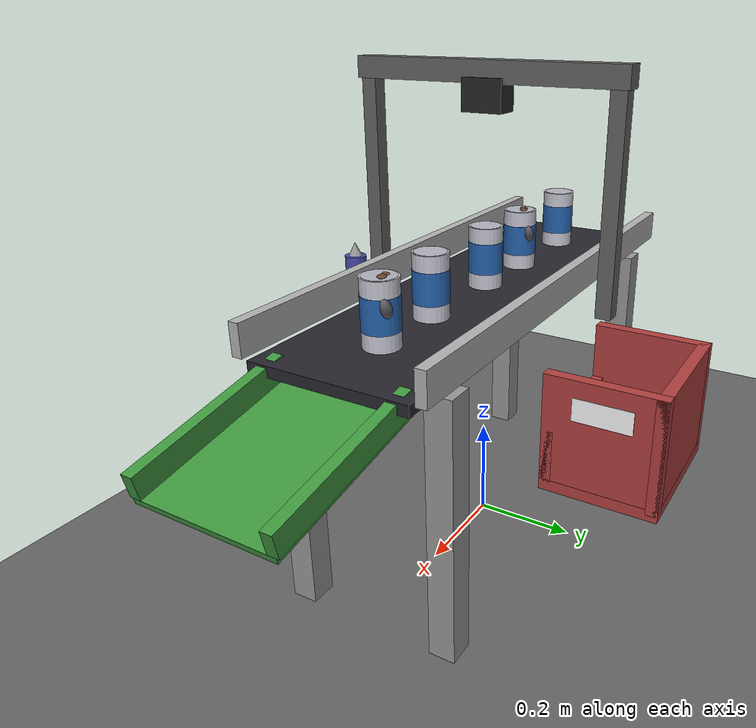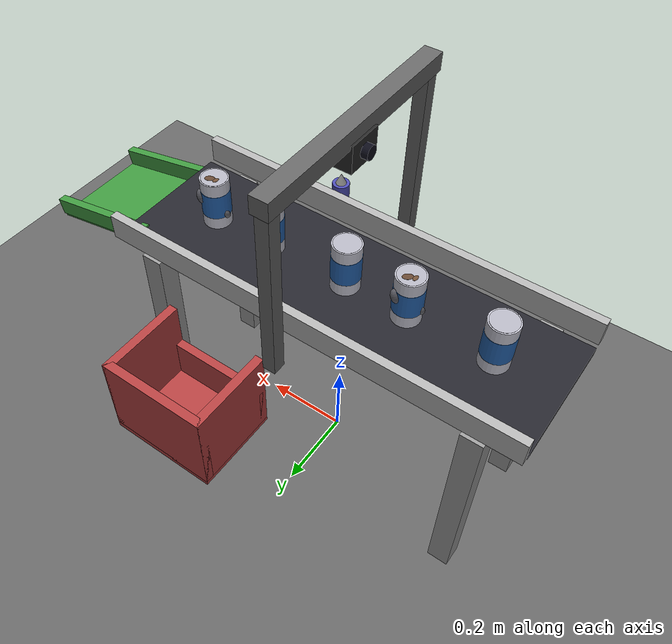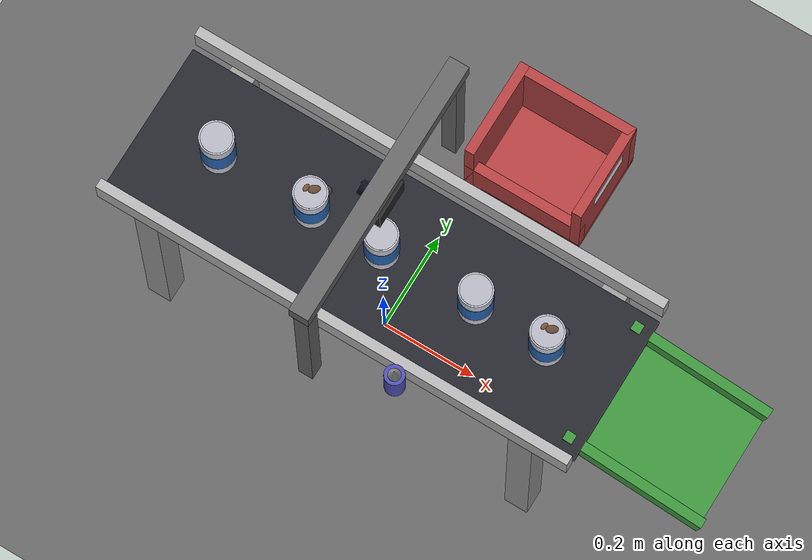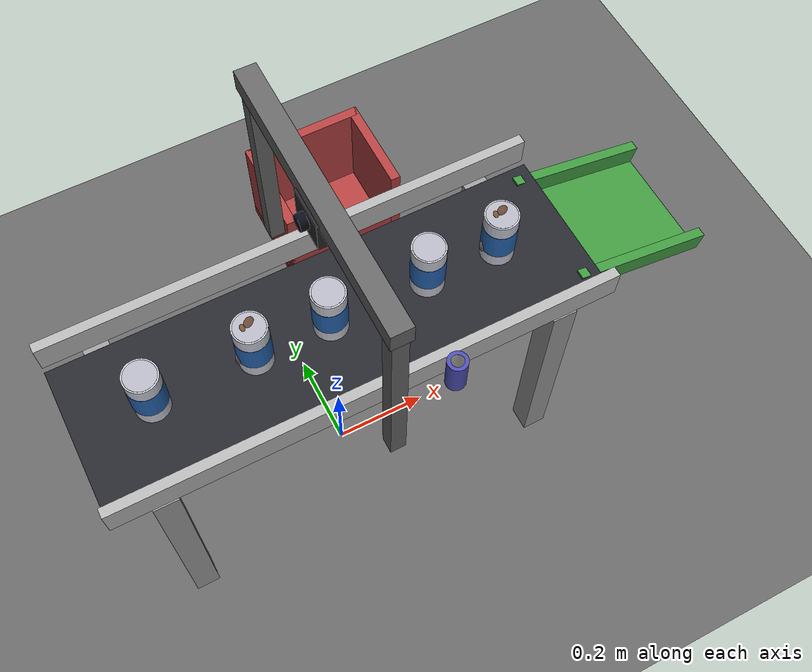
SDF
<?xml version="1.0" ?>
<sdf version="1.9">
  <world name="fruit_inspection">

    <!-- ==================== PHYSICS ==================== -->
    <physics name="1ms" type="ignored">
      <max_step_size>0.001</max_step_size>
      <real_time_factor>1.0</real_time_factor>
      <real_time_update_rate>1000</real_time_update_rate>
    </physics>

    <!-- Required plugins -->
    <plugin filename="gz-sim-physics-system" name="gz::sim::systems::Physics"/>
    <plugin filename="gz-sim-scene-broadcaster-system" name="gz::sim::systems::SceneBroadcaster"/>
    <plugin filename="gz-sim-user-commands-system" name="gz::sim::systems::UserCommands"/>
    <plugin filename="gz-sim-sensors-system" name="gz::sim::systems::Sensors">
      <render_engine>ogre2</render_engine>
    </plugin>
    <plugin filename="gz-sim-contact-system" name="gz::sim::systems::Contact"/>

    <!-- ==================== SCENE ==================== -->
    <scene>
      <ambient>0.6 0.6 0.6 1</ambient>
      <background>0.2 0.2 0.25 1</background>
      <shadows>true</shadows>
    </scene>

    <!-- ==================== LIGHTING ==================== -->
    <!-- Bright overhead lighting for consistent inspection -->
    <light type="directional" name="sun">
      <cast_shadows>true</cast_shadows>
      <pose>0 0 10 0 0 0</pose>
      <diffuse>0.9 0.9 0.9 1</diffuse>
      <specular>0.3 0.3 0.3 1</specular>
      <direction>-0.2 0.1 -1.0</direction>
    </light>

    <!-- Fill light to reduce shadows -->
    <light type="directional" name="fill_light">
      <cast_shadows>false</cast_shadows>
      <pose>0 0 8 0 0 0</pose>
      <diffuse>0.4 0.4 0.4 1</diffuse>
      <specular>0.1 0.1 0.1 1</specular>
      <direction>0.3 -0.2 -0.8</direction>
    </light>

    <!-- Inspection area spot light -->
    <light type="spot" name="inspection_light">
      <cast_shadows>false</cast_shadows>
      <pose>0 0 0.8 0 0 0</pose>
      <diffuse>1.0 1.0 1.0 1</diffuse>
      <specular>0.5 0.5 0.5 1</specular>
      <direction>0 0 -1</direction>
      <spot>
        <inner_angle>0.5</inner_angle>
        <outer_angle>0.8</outer_angle>
        <falloff>1.0</falloff>
      </spot>
    </light>

    <!-- ==================== GROUND ==================== -->
    <model name="ground_plane">
      <static>true</static>
      <link name="link">
        <collision name="collision">
          <geometry>
            <plane>
              <normal>0 0 1</normal>
              <size>10 10</size>
            </plane>
          </geometry>
        </collision>
        <visual name="visual">
          <geometry>
            <plane>
              <normal>0 0 1</normal>
              <size>10 10</size>
            </plane>
          </geometry>
          <material>
            <ambient>0.3 0.3 0.3 1</ambient>
            <diffuse>0.4 0.4 0.4 1</diffuse>
          </material>
        </visual>
      </link>
    </model>

    <!-- ==================== CONVEYOR STRUCTURE ==================== -->
    <!-- Main conveyor frame/table -->
    <model name="conveyor_frame">
      <static>true</static>
      <pose>0 0 0 0 0 0</pose>

      <!-- Support legs -->
      <link name="leg_1">
        <pose>-0.4 -0.15 0.25 0 0 0</pose>
        <visual name="visual">
          <geometry><box><size>0.05 0.05 0.5</size></box></geometry>
          <material>
            <ambient>0.5 0.5 0.5 1</ambient>
            <diffuse>0.6 0.6 0.6 1</diffuse>
          </material>
        </visual>
        <collision name="collision">
          <geometry><box><size>0.05 0.05 0.5</size></box></geometry>
        </collision>
      </link>

      <link name="leg_2">
        <pose>-0.4 0.15 0.25 0 0 0</pose>
        <visual name="visual">
          <geometry><box><size>0.05 0.05 0.5</size></box></geometry>
          <material>
            <ambient>0.5 0.5 0.5 1</ambient>
            <diffuse>0.6 0.6 0.6 1</diffuse>
          </material>
        </visual>
        <collision name="collision">
          <geometry><box><size>0.05 0.05 0.5</size></box></geometry>
        </collision>
      </link>

      <link name="leg_3">
        <pose>0.4 -0.15 0.25 0 0 0</pose>
        <visual name="visual">
          <geometry><box><size>0.05 0.05 0.5</size></box></geometry>
          <material>
            <ambient>0.5 0.5 0.5 1</ambient>
            <diffuse>0.6 0.6 0.6 1</diffuse>
          </material>
        </visual>
        <collision name="collision">
          <geometry><box><size>0.05 0.05 0.5</size></box></geometry>
        </collision>
      </link>

      <link name="leg_4">
        <pose>0.4 0.15 0.25 0 0 0</pose>
        <visual name="visual">
          <geometry><box><size>0.05 0.05 0.5</size></box></geometry>
          <material>
            <ambient>0.5 0.5 0.5 1</ambient>
            <diffuse>0.6 0.6 0.6 1</diffuse>
          </material>
        </visual>
        <collision name="collision">
          <geometry><box><size>0.05 0.05 0.5</size></box></geometry>
        </collision>
      </link>

      <!-- Conveyor belt surface -->
      <link name="belt">
        <pose>0 0 0.51 0 0 0</pose>
        <visual name="visual">
          <geometry><box><size>1.0 0.3 0.02</size></box></geometry>
          <material>
            <ambient>0.1 0.1 0.12 1</ambient>
            <diffuse>0.15 0.15 0.18 1</diffuse>
          </material>
        </visual>
        <collision name="collision">
          <geometry><box><size>1.0 0.3 0.02</size></box></geometry>
          <surface>
            <friction>
              <ode>
                <mu>1.0</mu>
                <mu2>1.0</mu2>
              </ode>
            </friction>
          </surface>
        </collision>
      </link>

      <!-- Side rails -->
      <link name="rail_left">
        <pose>0 0.17 0.55 0 0 0</pose>
        <visual name="visual">
          <geometry><box><size>1.0 0.02 0.06</size></box></geometry>
          <material>
            <ambient>0.6 0.6 0.6 1</ambient>
            <diffuse>0.7 0.7 0.7 1</diffuse>
          </material>
        </visual>
        <collision name="collision">
          <geometry><box><size>1.0 0.02 0.06</size></box></geometry>
        </collision>
      </link>

      <link name="rail_right">
        <pose>0 -0.17 0.55 0 0 0</pose>
        <visual name="visual">
          <geometry><box><size>1.0 0.02 0.06</size></box></geometry>
          <material>
            <ambient>0.6 0.6 0.6 1</ambient>
            <diffuse>0.7 0.7 0.7 1</diffuse>
          </material>
        </visual>
        <collision name="collision">
          <geometry><box><size>1.0 0.02 0.06</size></box></geometry>
        </collision>
      </link>

      <!-- Camera mount (gantry over conveyor) -->
      <link name="camera_mount_left">
        <pose>0 0.25 0.7 0 0 0</pose>
        <visual name="visual">
          <geometry><box><size>0.03 0.03 0.4</size></box></geometry>
          <material>
            <ambient>0.3 0.3 0.3 1</ambient>
            <diffuse>0.4 0.4 0.4 1</diffuse>
          </material>
        </visual>
      </link>

      <link name="camera_mount_right">
        <pose>0 -0.25 0.7 0 0 0</pose>
        <visual name="visual">
          <geometry><box><size>0.03 0.03 0.4</size></box></geometry>
          <material>
            <ambient>0.3 0.3 0.3 1</ambient>
            <diffuse>0.4 0.4 0.4 1</diffuse>
          </material>
        </visual>
      </link>

      <link name="camera_crossbar">
        <pose>0 0 0.92 0 0 0</pose>
        <visual name="visual">
          <geometry><box><size>0.04 0.54 0.04</size></box></geometry>
          <material>
            <ambient>0.3 0.3 0.3 1</ambient>
            <diffuse>0.4 0.4 0.4 1</diffuse>
          </material>
        </visual>
      </link>
    </model>

    <!-- ==================== INSPECTION CAMERA ==================== -->
    <model name="inspection_camera">
      <static>true</static>
      <pose>0 0 0.88 0 1.5708 0</pose>  <!-- Pointing straight down -->

      <link name="camera_body">
        <visual name="camera_housing">
          <geometry>
            <box><size>0.06 0.08 0.05</size></box>
          </geometry>
          <material>
            <ambient>0.1 0.1 0.1 1</ambient>
            <diffuse>0.15 0.15 0.15 1</diffuse>
          </material>
        </visual>

        <visual name="lens">
          <pose>0 0 -0.03 0 0 0</pose>
          <geometry>
            <cylinder>
              <radius>0.015</radius>
              <length>0.02</length>
            </cylinder>
          </geometry>
          <material>
            <ambient>0.02 0.02 0.05 1</ambient>
            <diffuse>0.05 0.05 0.1 1</diffuse>
          </material>
        </visual>

        <sensor name="inspection_cam" type="camera">
          <pose>0 0 -0.04 0 0 0</pose>
          <always_on>1</always_on>
          <update_rate>30</update_rate>
          <topic>inspection_camera</topic>
          <camera>
            <horizontal_fov>1.047</horizontal_fov>  <!-- 60 degrees -->
            <image>
              <width>640</width>
              <height>480</height>
              <format>R8G8B8</format>
            </image>
            <clip>
              <near>0.1</near>
              <far>5.0</far>
            </clip>
          </camera>
        </sensor>
      </link>
    </model>

    <!-- ==================== AIR JET REJECTOR ==================== -->
    <!-- Visual representation of air jet nozzle -->
    <model name="air_jet_rejector">
      <static>true</static>
      <pose>0.15 -0.2 0.55 0 0 1.5708</pose>  <!-- On right side, pointing left -->

      <link name="nozzle">
        <visual name="housing">
          <geometry>
            <cylinder>
              <radius>0.02</radius>
              <length>0.08</length>
            </cylinder>
          </geometry>
          <material>
            <ambient>0.2 0.2 0.6 1</ambient>
            <diffuse>0.3 0.3 0.7 1</diffuse>
          </material>
        </visual>

        <visual name="nozzle_tip">
          <pose>0 0 0.05 0 0 0</pose>
          <geometry>
            <cone>
              <radius>0.015</radius>
              <length>0.03</length>
            </cone>
          </geometry>
          <material>
            <ambient>0.5 0.5 0.5 1</ambient>
            <diffuse>0.6 0.6 0.6 1</diffuse>
          </material>
        </visual>
      </link>
    </model>

    <!-- ==================== REJECT BIN ==================== -->
    <model name="reject_bin">
      <static>true</static>
      <pose>0.15 0.35 0.3 0 0 0</pose>

      <!-- Bin walls (open top box) -->
      <link name="bin">
        <!-- Bottom -->
        <visual name="bottom">
          <pose>0 0 0 0 0 0</pose>
          <geometry><box><size>0.25 0.2 0.02</size></box></geometry>
          <material>
            <ambient>0.6 0.2 0.2 1</ambient>
            <diffuse>0.7 0.25 0.25 1</diffuse>
          </material>
        </visual>
        <collision name="bottom_col">
          <pose>0 0 0 0 0 0</pose>
          <geometry><box><size>0.25 0.2 0.02</size></box></geometry>
        </collision>

        <!-- Front wall -->
        <visual name="front">
          <pose>0.115 0 0.1 0 0 0</pose>
          <geometry><box><size>0.02 0.2 0.2</size></box></geometry>
          <material>
            <ambient>0.6 0.2 0.2 1</ambient>
            <diffuse>0.7 0.25 0.25 1</diffuse>
          </material>
        </visual>
        <collision name="front_col">
          <pose>0.115 0 0.1 0 0 0</pose>
          <geometry><box><size>0.02 0.2 0.2</size></box></geometry>
        </collision>

        <!-- Back wall -->
        <visual name="back">
          <pose>-0.115 0 0.1 0 0 0</pose>
          <geometry><box><size>0.02 0.2 0.2</size></box></geometry>
          <material>
            <ambient>0.6 0.2 0.2 1</ambient>
            <diffuse>0.7 0.25 0.25 1</diffuse>
          </material>
        </visual>
        <collision name="back_col">
          <pose>-0.115 0 0.1 0 0 0</pose>
          <geometry><box><size>0.02 0.2 0.2</size></box></geometry>
        </collision>

        <!-- Left wall -->
        <visual name="left">
          <pose>0 0.09 0.1 0 0 0</pose>
          <geometry><box><size>0.25 0.02 0.2</size></box></geometry>
          <material>
            <ambient>0.6 0.2 0.2 1</ambient>
            <diffuse>0.7 0.25 0.25 1</diffuse>
          </material>
        </visual>
        <collision name="left_col">
          <pose>0 0.09 0.1 0 0 0</pose>
          <geometry><box><size>0.25 0.02 0.2</size></box></geometry>
        </collision>

        <!-- Right wall (lower, acts as chute entry) -->
        <visual name="right">
          <pose>0 -0.09 0.05 0 0 0</pose>
          <geometry><box><size>0.25 0.02 0.1</size></box></geometry>
          <material>
            <ambient>0.6 0.2 0.2 1</ambient>
            <diffuse>0.7 0.25 0.25 1</diffuse>
          </material>
        </visual>
        <collision name="right_col">
          <pose>0 -0.09 0.05 0 0 0</pose>
          <geometry><box><size>0.25 0.02 0.1</size></box></geometry>
        </collision>

        <!-- Label -->
        <visual name="label">
          <pose>0.125 0 0.15 0 0 1.5708</pose>
          <geometry><box><size>0.1 0.001 0.04</size></box></geometry>
          <material>
            <ambient>0.9 0.9 0.9 1</ambient>
            <diffuse>1.0 1.0 1.0 1</diffuse>
          </material>
        </visual>
      </link>
    </model>

    <!-- ==================== OUTPUT CHUTE ==================== -->
    <model name="output_chute">
      <static>true</static>
      <pose>0.6 0 0.45 0 0.2 0</pose>  <!-- Slightly angled down -->

      <link name="chute">
        <!-- Bottom surface -->
        <visual name="surface">
          <geometry><box><size>0.3 0.25 0.01</size></box></geometry>
          <material>
            <ambient>0.2 0.5 0.2 1</ambient>
            <diffuse>0.25 0.6 0.25 1</diffuse>
          </material>
        </visual>
        <collision name="surface_col">
          <geometry><box><size>0.3 0.25 0.01</size></box></geometry>
        </collision>

        <!-- Side rails -->
        <visual name="rail_left">
          <pose>0 0.12 0.025 0 0 0</pose>
          <geometry><box><size>0.3 0.02 0.04</size></box></geometry>
          <material>
            <ambient>0.2 0.5 0.2 1</ambient>
            <diffuse>0.25 0.6 0.25 1</diffuse>
          </material>
        </visual>
        <collision name="rail_left_col">
          <pose>0 0.12 0.025 0 0 0</pose>
          <geometry><box><size>0.3 0.02 0.04</size></box></geometry>
        </collision>

        <visual name="rail_right">
          <pose>0 -0.12 0.025 0 0 0</pose>
          <geometry><box><size>0.3 0.02 0.04</size></box></geometry>
          <material>
            <ambient>0.2 0.5 0.2 1</ambient>
            <diffuse>0.25 0.6 0.25 1</diffuse>
          </material>
        </visual>
        <collision name="rail_right_col">
          <pose>0 -0.12 0.025 0 0 0</pose>
          <geometry><box><size>0.3 0.02 0.04</size></box></geometry>
        </collision>
      </link>
    </model>

    <!-- ==================== SAMPLE CANS ==================== -->
    <!-- Mix of good and dented cans on the conveyor -->

    <!-- Good can 1 - at input end -->
    <include>
      <uri>model://can_good</uri>
      <name>can_good_1</name>
      <pose>-0.35 0 0.58 0 0 0.3</pose>
    </include>

    <!-- Dented can 1 - approaching inspection zone -->
    <include>
      <uri>model://can_dented</uri>
      <name>can_dented_1</name>
      <pose>-0.15 0 0.58 0 0 0.7</pose>
    </include>

    <!-- Good can 2 - in inspection zone -->
    <include>
      <uri>model://can_good</uri>
      <name>can_good_2</name>
      <pose>0.0 0 0.58 0 0 1.2</pose>
    </include>

    <!-- Good can 3 - past inspection zone -->
    <include>
      <uri>model://can_good</uri>
      <name>can_good_3</name>
      <pose>0.2 0 0.58 0 0 2.1</pose>
    </include>

    <!-- Dented can 2 - near output -->
    <include>
      <uri>model://can_dented</uri>
      <name>can_dented_2</name>
      <pose>0.35 0 0.58 0 0 0.5</pose>
    </include>

  </world>
</sdf>

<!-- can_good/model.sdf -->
<!--
  Good Can Model

  Standard aluminum beverage can - undamaged.
  Dimensions: ~6.5cm diameter, ~12cm height
-->
<sdf version="1.9">
  <model name="can_good">
    <static>false</static>

    <link name="body">
      <inertial>
        <mass>0.35</mass>
        <inertia>
          <ixx>0.00045</ixx>
          <iyy>0.00045</iyy>
          <izz>0.00020</izz>
        </inertia>
      </inertial>

      <!-- Main can body -->
      <visual name="can_body">
        <geometry>
          <cylinder>
            <radius>0.033</radius>
            <length>0.12</length>
          </cylinder>
        </geometry>
        <material>
          <ambient>0.7 0.7 0.75 1</ambient>
          <diffuse>0.8 0.8 0.85 1</diffuse>
          <specular>0.9 0.9 0.9 1</specular>
          <pbr>
            <metal>
              <metalness>0.9</metalness>
              <roughness>0.3</roughness>
            </metal>
          </pbr>
        </material>
      </visual>

      <!-- Top lid -->
      <visual name="top_lid">
        <pose>0 0 0.059 0 0 0</pose>
        <geometry>
          <cylinder>
            <radius>0.030</radius>
            <length>0.003</length>
          </cylinder>
        </geometry>
        <material>
          <ambient>0.6 0.6 0.65 1</ambient>
          <diffuse>0.7 0.7 0.75 1</diffuse>
          <specular>0.85 0.85 0.85 1</specular>
          <pbr>
            <metal>
              <metalness>0.95</metalness>
              <roughness>0.2</roughness>
            </metal>
          </pbr>
        </material>
      </visual>

      <!-- Bottom -->
      <visual name="bottom">
        <pose>0 0 -0.059 0 0 0</pose>
        <geometry>
          <cylinder>
            <radius>0.030</radius>
            <length>0.003</length>
          </cylinder>
        </geometry>
        <material>
          <ambient>0.6 0.6 0.65 1</ambient>
          <diffuse>0.7 0.7 0.75 1</diffuse>
          <specular>0.85 0.85 0.85 1</specular>
          <pbr>
            <metal>
              <metalness>0.95</metalness>
              <roughness>0.2</roughness>
            </metal>
          </pbr>
        </material>
      </visual>

      <!-- Label band (colored stripe) -->
      <visual name="label">
        <pose>0 0 0 0 0 0</pose>
        <geometry>
          <cylinder>
            <radius>0.0335</radius>
            <length>0.06</length>
          </cylinder>
        </geometry>
        <material>
          <ambient>0.1 0.3 0.6 1</ambient>
          <diffuse>0.15 0.4 0.7 1</diffuse>
          <specular>0.3 0.3 0.3 1</specular>
          <pbr>
            <metal>
              <metalness>0.1</metalness>
              <roughness>0.5</roughness>
            </metal>
          </pbr>
        </material>
      </visual>

      <collision name="collision">
        <geometry>
          <cylinder>
            <radius>0.033</radius>
            <length>0.12</length>
          </cylinder>
        </geometry>
        <surface>
          <friction>
            <ode>
              <mu>0.5</mu>
              <mu2>0.5</mu2>
            </ode>
          </friction>
        </surface>
      </collision>
    </link>
  </model>
</sdf>

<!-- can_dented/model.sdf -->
<!--
  Dented Can Model

  Damaged aluminum beverage can with visible dent.
  The dent is shown as a darker discolored area on the side.
-->
<sdf version="1.9">
  <model name="can_dented">
    <static>false</static>

    <link name="body">
      <inertial>
        <mass>0.35</mass>
        <inertia>
          <ixx>0.00045</ixx>
          <iyy>0.00045</iyy>
          <izz>0.00020</izz>
        </inertia>
      </inertial>

      <!-- Main can body -->
      <visual name="can_body">
        <geometry>
          <cylinder>
            <radius>0.033</radius>
            <length>0.12</length>
          </cylinder>
        </geometry>
        <material>
          <ambient>0.7 0.7 0.75 1</ambient>
          <diffuse>0.8 0.8 0.85 1</diffuse>
          <specular>0.9 0.9 0.9 1</specular>
          <pbr>
            <metal>
              <metalness>0.9</metalness>
              <roughness>0.3</roughness>
            </metal>
          </pbr>
        </material>
      </visual>

      <!-- Top lid -->
      <visual name="top_lid">
        <pose>0 0 0.059 0 0 0</pose>
        <geometry>
          <cylinder>
            <radius>0.030</radius>
            <length>0.003</length>
          </cylinder>
        </geometry>
        <material>
          <ambient>0.6 0.6 0.65 1</ambient>
          <diffuse>0.7 0.7 0.75 1</diffuse>
          <specular>0.85 0.85 0.85 1</specular>
          <pbr>
            <metal>
              <metalness>0.95</metalness>
              <roughness>0.2</roughness>
            </metal>
          </pbr>
        </material>
      </visual>

      <!-- Damage mark on top - visible from overhead camera -->
      <visual name="top_damage">
        <pose>0.008 0.005 0.061 0 0 0</pose>
        <geometry>
          <ellipsoid>
            <radii>0.012 0.008 0.002</radii>
          </ellipsoid>
        </geometry>
        <material>
          <ambient>0.3 0.2 0.15 1</ambient>
          <diffuse>0.4 0.28 0.2 1</diffuse>
          <specular>0.2 0.2 0.2 1</specular>
          <pbr>
            <metal>
              <metalness>0.5</metalness>
              <roughness>0.7</roughness>
            </metal>
          </pbr>
        </material>
      </visual>

      <!-- Second damage mark on top -->
      <visual name="top_damage2">
        <pose>-0.006 0.010 0.061 0 0 0.8</pose>
        <geometry>
          <ellipsoid>
            <radii>0.008 0.005 0.002</radii>
          </ellipsoid>
        </geometry>
        <material>
          <ambient>0.35 0.25 0.18 1</ambient>
          <diffuse>0.45 0.32 0.22 1</diffuse>
          <specular>0.2 0.2 0.2 1</specular>
          <pbr>
            <metal>
              <metalness>0.5</metalness>
              <roughness>0.65</roughness>
            </metal>
          </pbr>
        </material>
      </visual>

      <!-- Bottom -->
      <visual name="bottom">
        <pose>0 0 -0.059 0 0 0</pose>
        <geometry>
          <cylinder>
            <radius>0.030</radius>
            <length>0.003</length>
          </cylinder>
        </geometry>
        <material>
          <ambient>0.6 0.6 0.65 1</ambient>
          <diffuse>0.7 0.7 0.75 1</diffuse>
          <specular>0.85 0.85 0.85 1</specular>
          <pbr>
            <metal>
              <metalness>0.95</metalness>
              <roughness>0.2</roughness>
            </metal>
          </pbr>
        </material>
      </visual>

      <!-- Label band (colored stripe) -->
      <visual name="label">
        <pose>0 0 0 0 0 0</pose>
        <geometry>
          <cylinder>
            <radius>0.0335</radius>
            <length>0.06</length>
          </cylinder>
        </geometry>
        <material>
          <ambient>0.1 0.3 0.6 1</ambient>
          <diffuse>0.15 0.4 0.7 1</diffuse>
          <specular>0.3 0.3 0.3 1</specular>
          <pbr>
            <metal>
              <metalness>0.1</metalness>
              <roughness>0.5</roughness>
            </metal>
          </pbr>
        </material>
      </visual>

      <!-- Dent - visible damage on side (dark discolored area) -->
      <visual name="dent">
        <pose>0.028 0.012 0.015 0.2 0.3 0</pose>
        <geometry>
          <ellipsoid>
            <radii>0.012 0.010 0.018</radii>
          </ellipsoid>
        </geometry>
        <material>
          <ambient>0.25 0.25 0.28 1</ambient>
          <diffuse>0.35 0.35 0.38 1</diffuse>
          <specular>0.5 0.5 0.5 1</specular>
          <pbr>
            <metal>
              <metalness>0.7</metalness>
              <roughness>0.6</roughness>
            </metal>
          </pbr>
        </material>
      </visual>

      <!-- Second smaller dent -->
      <visual name="dent2">
        <pose>-0.025 0.018 -0.025 -0.1 0.4 0.2</pose>
        <geometry>
          <ellipsoid>
            <radii>0.008 0.007 0.012</radii>
          </ellipsoid>
        </geometry>
        <material>
          <ambient>0.28 0.28 0.30 1</ambient>
          <diffuse>0.38 0.38 0.40 1</diffuse>
          <specular>0.5 0.5 0.5 1</specular>
          <pbr>
            <metal>
              <metalness>0.7</metalness>
              <roughness>0.55</roughness>
            </metal>
          </pbr>
        </material>
      </visual>

      <collision name="collision">
        <geometry>
          <cylinder>
            <radius>0.033</radius>
            <length>0.12</length>
          </cylinder>
        </geometry>
        <surface>
          <friction>
            <ode>
              <mu>0.5</mu>
              <mu2>0.5</mu2>
            </ode>
          </friction>
        </surface>
      </collision>
    </link>
  </model>
</sdf>
